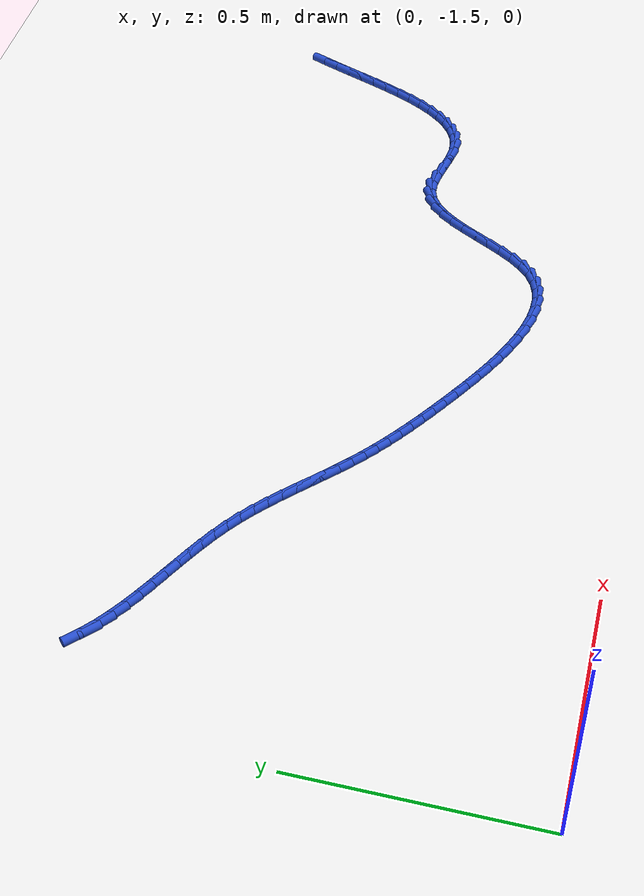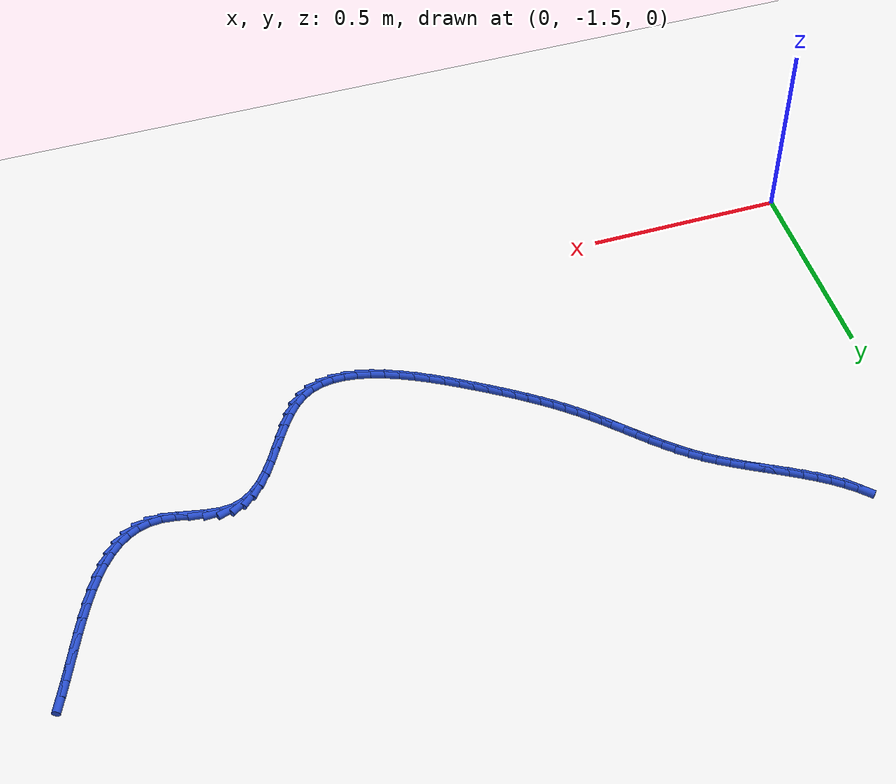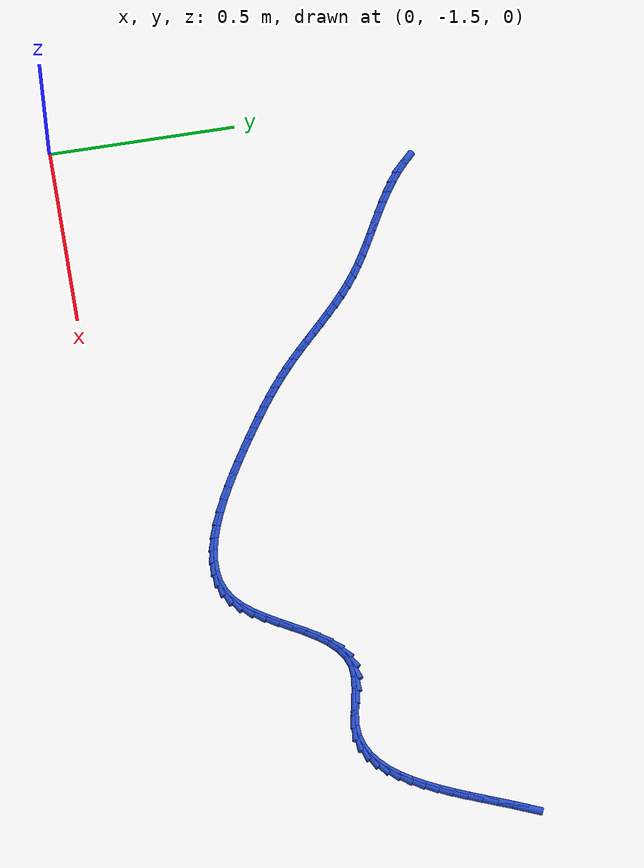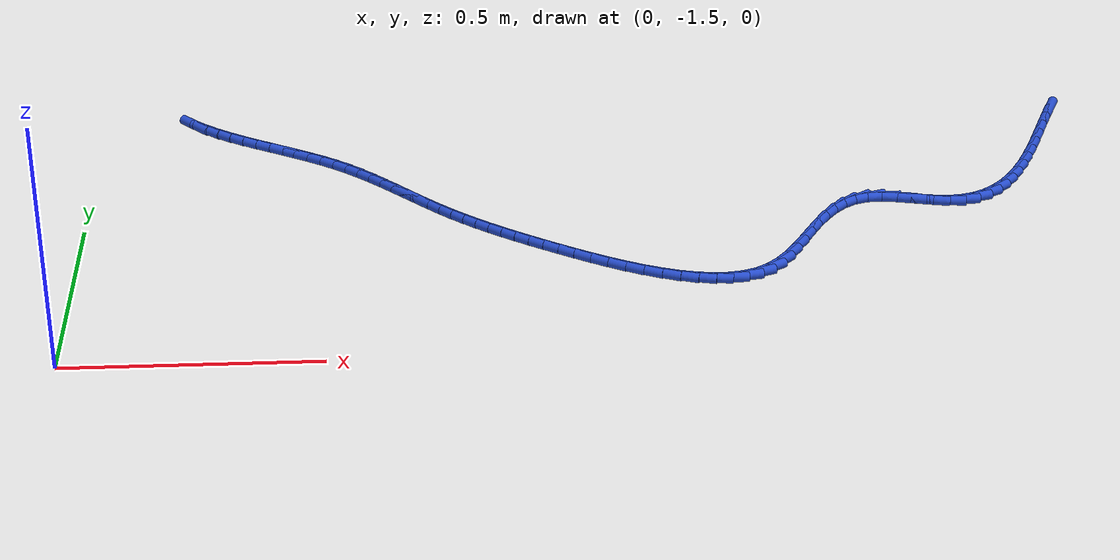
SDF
<sdf version="1.6">
 <world name="default">
  <model name="ground_plane">
   <static>1</static>
   <link name="link">
    <collision name="collision">
     <geometry><plane><normal>0 0 1</normal><size>100 100</size></plane></geometry>
     <surface><friction><ode><mu>100</mu><mu2>50</mu2></ode></friction></surface>
    </collision>
    <visual name="visual">
     <cast_shadows>0</cast_shadows>
     <geometry><plane><normal>0 0 1</normal><size>100 100</size></plane></geometry>
     <material>
      <script><uri>file://media/materials/scripts/gazebo.material</uri><name>Gazebo/WhiteGlow</name></script>
     </material>
    </visual>
   </link>
  </model>
  <model name="line">
   <link name="link_128">
    <pose>2.0259299880434516 -0.5823677519738194 0.01 0 1.57 1.1730430598600052</pose>
    <collision name="collision">
     <geometry><cylinder><radius>0.01</radius><length>0.08</length></cylinder></geometry>
    </collision>
    <visual name="visual">
     <material>
      <script><name>Gazebo/Blue</name><uri>file://media/materials/scripts/gazebo.material</uri></script>
     </material>
     <geometry><cylinder><radius>0.01</radius><length>0.08</length></cylinder></geometry>
    </visual>
   </link>
   <link name="link_129">
    <pose>2.0114672150067396 -0.6167908464994579 0.01 0 1.57 1.1875507603293178</pose>
    <collision name="collision">
     <geometry><cylinder><radius>0.01</radius><length>0.08</length></cylinder></geometry>
    </collision>
    <visual name="visual">
     <material>
      <script><name>Gazebo/Blue</name><uri>file://media/materials/scripts/gazebo.material</uri></script>
     </material>
     <geometry><cylinder><radius>0.01</radius><length>0.08</length></cylinder></geometry>
    </visual>
   </link>
   <link name="link_130">
    <pose>1.9972013718887427 -0.6521740733494433 0.01 0 1.57 1.1919885100447403</pose>
    <collision name="collision">
     <geometry><cylinder><radius>0.01</radius><length>0.08</length></cylinder></geometry>
    </collision>
    <visual name="visual">
     <material>
      <script><name>Gazebo/Blue</name><uri>file://media/materials/scripts/gazebo.material</uri></script>
     </material>
     <geometry><cylinder><radius>0.01</radius><length>0.08</length></cylinder></geometry>
    </visual>
   </link>
   <link name="link_131">
    <pose>1.98293663194036 -0.6880123365451973 0.01 0 1.57 1.1868217123394451</pose>
    <collision name="collision">
     <geometry><cylinder><radius>0.01</radius><length>0.08</length></cylinder></geometry>
    </collision>
    <visual name="visual">
     <material>
      <script><name>Gazebo/Blue</name><uri>file://media/materials/scripts/gazebo.material</uri></script>
     </material>
     <geometry><cylinder><radius>0.01</radius><length>0.08</length></cylinder></geometry>
    </visual>
   </link>
   <link name="link_132">
    <pose>1.9684771684124904 -0.7238005401081387 0.01 0 1.57 1.1719111946471517</pose>
    <collision name="collision">
     <geometry><cylinder><radius>0.01</radius><length>0.08</length></cylinder></geometry>
    </collision>
    <visual name="visual">
     <material>
      <script><name>Gazebo/Blue</name><uri>file://media/materials/scripts/gazebo.material</uri></script>
     </material>
     <geometry><cylinder><radius>0.01</radius><length>0.08</length></cylinder></geometry>
    </visual>
   </link>
   <link name="link_133">
    <pose>1.9536271545560326 -0.7590335880596896 0.01 0 1.57 1.146516483542415</pose>
    <collision name="collision">
     <geometry><cylinder><radius>0.01</radius><length>0.08</length></cylinder></geometry>
    </collision>
    <visual name="visual">
     <material>
      <script><name>Gazebo/Blue</name><uri>file://media/materials/scripts/gazebo.material</uri></script>
     </material>
     <geometry><cylinder><radius>0.01</radius><length>0.08</length></cylinder></geometry>
    </visual>
   </link>
   <link name="link_134">
    <pose>1.9381907636218851 -0.7932063844212702 0.01 0 1.57 1.1092394917270558</pose>
    <collision name="collision">
     <geometry><cylinder><radius>0.01</radius><length>0.08</length></cylinder></geometry>
    </collision>
    <visual name="visual">
     <material>
      <script><name>Gazebo/Blue</name><uri>file://media/materials/scripts/gazebo.material</uri></script>
     </material>
     <geometry><cylinder><radius>0.01</radius><length>0.08</length></cylinder></geometry>
    </visual>
   </link>
   <link name="link_135">
    <pose>1.9219721688609468 -0.8258138332143032 0.01 0 1.57 1.057920424494118</pose>
    <collision name="collision">
     <geometry><cylinder><radius>0.01</radius><length>0.08</length></cylinder></geometry>
    </collision>
    <visual name="visual">
     <material>
      <script><name>Gazebo/Blue</name><uri>file://media/materials/scripts/gazebo.material</uri></script>
     </material>
     <geometry><cylinder><radius>0.01</radius><length>0.08</length></cylinder></geometry>
    </visual>
   </link>
   <link name="link_136">
    <pose>1.9047755435241156 -0.8563508384602065 0.01 0 1.57 0.9895209255278028</pose>
    <collision name="collision">
     <geometry><cylinder><radius>0.01</radius><length>0.08</length></cylinder></geometry>
    </collision>
    <visual name="visual">
     <material>
      <script><name>Gazebo/Blue</name><uri>file://media/materials/scripts/gazebo.material</uri></script>
     </material>
     <geometry><cylinder><radius>0.01</radius><length>0.08</length></cylinder></geometry>
    </visual>
   </link>
   <link name="link_137">
    <pose>1.8864050608622913 -0.8843123041804027 0.01 0 1.57 0.900099755213131</pose>
    <collision name="collision">
     <geometry><cylinder><radius>0.01</radius><length>0.08</length></cylinder></geometry>
    </collision>
    <visual name="visual">
     <material>
      <script><name>Gazebo/Blue</name><uri>file://media/materials/scripts/gazebo.material</uri></script>
     </material>
     <geometry><cylinder><radius>0.01</radius><length>0.08</length></cylinder></geometry>
    </visual>
   </link>
   <link name="link_138">
    <pose>1.8666648941263726 -0.9091931343963128 0.01 0 1.57 0.7851498386772099</pose>
    <collision name="collision">
     <geometry><cylinder><radius>0.01</radius><length>0.08</length></cylinder></geometry>
    </collision>
    <visual name="visual">
     <material>
      <script><name>Gazebo/Blue</name><uri>file://media/materials/scripts/gazebo.material</uri></script>
     </material>
     <geometry><cylinder><radius>0.01</radius><length>0.08</length></cylinder></geometry>
    </visual>
   </link>
   <link name="link_139">
    <pose>1.8453592165672563 -0.9304882331293569 0.01 0 1.57 0.640832516472344</pose>
    <collision name="collision">
     <geometry><cylinder><radius>0.01</radius><length>0.08</length></cylinder></geometry>
    </collision>
    <visual name="visual">
     <material>
      <script><name>Gazebo/Blue</name><uri>file://media/materials/scripts/gazebo.material</uri></script>
     </material>
     <geometry><cylinder><radius>0.01</radius><length>0.08</length></cylinder></geometry>
    </visual>
   </link>
   <link name="link_140">
    <pose>1.8222922014358442 -0.9476925044009563 0.01 0 1.57 0.46672015485492796</pose>
    <collision name="collision">
     <geometry><cylinder><radius>0.01</radius><length>0.08</length></cylinder></geometry>
    </collision>
    <visual name="visual">
     <material>
      <script><name>Gazebo/Blue</name><uri>file://media/materials/scripts/gazebo.material</uri></script>
     </material>
     <geometry><cylinder><radius>0.01</radius><length>0.08</length></cylinder></geometry>
    </visual>
   </link>
   <link name="link_141">
    <pose>1.7972680219830326 -0.9603008522325309 0.01 0 1.57 0.2695154778959505</pose>
    <collision name="collision">
     <geometry><cylinder><radius>0.01</radius><length>0.08</length></cylinder></geometry>
    </collision>
    <visual name="visual">
     <material>
      <script><name>Gazebo/Blue</name><uri>file://media/materials/scripts/gazebo.material</uri></script>
     </material>
     <geometry><cylinder><radius>0.01</radius><length>0.08</length></cylinder></geometry>
    </visual>
   </link>
   <link name="link_142">
    <pose>1.7700908514597216 -0.967808180645503 0.01 0 1.57 0.06431021430191364</pose>
    <collision name="collision">
     <geometry><cylinder><radius>0.01</radius><length>0.08</length></cylinder></geometry>
    </collision>
    <visual name="visual">
     <material>
      <script><name>Gazebo/Blue</name><uri>file://media/materials/scripts/gazebo.material</uri></script>
     </material>
     <geometry><cylinder><radius>0.01</radius><length>0.08</length></cylinder></geometry>
    </visual>
   </link>
   <link name="link_143">
    <pose>1.7405649540769565 -0.9697096194825852 0.01 0 1.57 -0.11023343268903418</pose>
    <collision name="collision">
     <geometry><cylinder><radius>0.01</radius><length>0.08</length></cylinder></geometry>
    </collision>
    <visual name="visual">
     <material>
      <script><name>Gazebo/Blue</name><uri>file://media/materials/scripts/gazebo.material</uri></script>
     </material>
     <geometry><cylinder><radius>0.01</radius><length>0.08</length></cylinder></geometry>
    </visual>
   </link>
   <link name="link_144">
    <pose>1.7087727211506893 -0.966190788033844 0.01 0 1.57 -0.1951183955960468</pose>
    <collision name="collision">
     <geometry><cylinder><radius>0.01</radius><length>0.08</length></cylinder></geometry>
    </collision>
    <visual name="visual">
     <material>
      <script><name>Gazebo/Blue</name><uri>file://media/materials/scripts/gazebo.material</uri></script>
     </material>
     <geometry><cylinder><radius>0.01</radius><length>0.08</length></cylinder></geometry>
    </visual>
   </link>
   <link name="link_145">
    <pose>1.6756887401985199 -0.9596523074764168 0.01 0 1.57 -0.19941315771520754</pose>
    <collision name="collision">
     <geometry><cylinder><radius>0.01</radius><length>0.08</length></cylinder></geometry>
    </collision>
    <visual name="visual">
     <material>
      <script><name>Gazebo/Blue</name><uri>file://media/materials/scripts/gazebo.material</uri></script>
     </material>
     <geometry><cylinder><radius>0.01</radius><length>0.08</length></cylinder></geometry>
    </visual>
   </link>
   <link name="link_146">
    <pose>1.6424661380320393 -0.9529380477620664 0.01 0 1.57 -0.12497115054533066</pose>
    <collision name="collision">
     <geometry><cylinder><radius>0.01</radius><length>0.08</length></cylinder></geometry>
    </collision>
    <visual name="visual">
     <material>
      <script><name>Gazebo/Blue</name><uri>file://media/materials/scripts/gazebo.material</uri></script>
     </material>
     <geometry><cylinder><radius>0.01</radius><length>0.08</length></cylinder></geometry>
    </visual>
   </link>
   <link name="link_147">
    <pose>1.6102580414628394 -0.9488918788425555 0.01 0 1.57 0.04875509731146005</pose>
    <collision name="collision">
     <geometry><cylinder><radius>0.01</radius><length>0.08</length></cylinder></geometry>
    </collision>
    <visual name="visual">
     <material>
      <script><name>Gazebo/Blue</name><uri>file://media/materials/scripts/gazebo.material</uri></script>
     </material>
     <geometry><cylinder><radius>0.01</radius><length>0.08</length></cylinder></geometry>
    </visual>
   </link>
   <link name="link_148">
    <pose>1.58021757553362 -0.9503576662876396 0.01 0 1.57 0.3247201030908295</pose>
    <collision name="collision">
     <geometry><cylinder><radius>0.01</radius><length>0.08</length></cylinder></geometry>
    </collision>
    <visual name="visual">
     <material>
      <script><name>Gazebo/Blue</name><uri>file://media/materials/scripts/gazebo.material</uri></script>
     </material>
     <geometry><cylinder><radius>0.01</radius><length>0.08</length></cylinder></geometry>
    </visual>
   </link>
   <link name="link_149">
    <pose>1.5532040416625692 -0.95945139727013 0.01 0 1.57 0.585832410845312</pose>
    <collision name="collision">
     <geometry><cylinder><radius>0.01</radius><length>0.08</length></cylinder></geometry>
    </collision>
    <visual name="visual">
     <material>
      <script><name>Gazebo/Blue</name><uri>file://media/materials/scripts/gazebo.material</uri></script>
     </material>
     <geometry><cylinder><radius>0.01</radius><length>0.08</length></cylinder></geometry>
    </visual>
   </link>
   <link name="link_150">
    <pose>1.5289649687704647 -0.9755349060776917 0.01 0 1.57 0.7809155714537817</pose>
    <collision name="collision">
     <geometry><cylinder><radius>0.01</radius><length>0.08</length></cylinder></geometry>
    </collision>
    <visual name="visual">
     <material>
      <script><name>Gazebo/Blue</name><uri>file://media/materials/scripts/gazebo.material</uri></script>
     </material>
     <geometry><cylinder><radius>0.01</radius><length>0.08</length></cylinder></geometry>
    </visual>
   </link>
   <link name="link_151">
    <pose>1.5069849736667513 -0.9973187245492796 0.01 0 1.57 0.9130279090325116</pose>
    <collision name="collision">
     <geometry><cylinder><radius>0.01</radius><length>0.08</length></cylinder></geometry>
    </collision>
    <visual name="visual">
     <material>
      <script><name>Gazebo/Blue</name><uri>file://media/materials/scripts/gazebo.material</uri></script>
     </material>
     <geometry><cylinder><radius>0.01</radius><length>0.08</length></cylinder></geometry>
    </visual>
   </link>
   <link name="link_152">
    <pose>1.4867486731608712 -1.0235133845238475 0.01 0 1.57 0.9955593625242147</pose>
    <collision name="collision">
     <geometry><cylinder><radius>0.01</radius><length>0.08</length></cylinder></geometry>
    </collision>
    <visual name="visual">
     <material>
      <script><name>Gazebo/Blue</name><uri>file://media/materials/scripts/gazebo.material</uri></script>
     </material>
     <geometry><cylinder><radius>0.01</radius><length>0.08</length></cylinder></geometry>
    </visual>
   </link>
   <link name="link_153">
    <pose>1.4677406840622704 -1.0528294178403488 0.01 0 1.57 1.03972260664129</pose>
    <collision name="collision">
     <geometry><cylinder><radius>0.01</radius><length>0.08</length></cylinder></geometry>
    </collision>
    <visual name="visual">
     <material>
      <script><name>Gazebo/Blue</name><uri>file://media/materials/scripts/gazebo.material</uri></script>
     </material>
     <geometry><cylinder><radius>0.01</radius><length>0.08</length></cylinder></geometry>
    </visual>
   </link>
   <link name="link_154">
    <pose>1.4494456231803923 -1.083977356337737 0.01 0 1.57 1.0519183464455115</pose>
    <collision name="collision">
     <geometry><cylinder><radius>0.01</radius><length>0.08</length></cylinder></geometry>
    </collision>
    <visual name="visual">
     <material>
      <script><name>Gazebo/Blue</name><uri>file://media/materials/scripts/gazebo.material</uri></script>
     </material>
     <geometry><cylinder><radius>0.01</radius><length>0.08</length></cylinder></geometry>
    </visual>
   </link>
   <link name="link_155">
    <pose>1.43134810732468 -1.115667731854967 0.01 0 1.57 1.033964413723012</pose>
    <collision name="collision">
     <geometry><cylinder><radius>0.01</radius><length>0.08</length></cylinder></geometry>
    </collision>
    <visual name="visual">
     <material>
      <script><name>Gazebo/Blue</name><uri>file://media/materials/scripts/gazebo.material</uri></script>
     </material>
     <geometry><cylinder><radius>0.01</radius><length>0.08</length></cylinder></geometry>
    </visual>
   </link>
   <link name="link_156">
    <pose>1.4129327533045777 -1.146611076230993 0.01 0 1.57 0.9833364901512713</pose>
    <collision name="collision">
     <geometry><cylinder><radius>0.01</radius><length>0.08</length></cylinder></geometry>
    </collision>
    <visual name="visual">
     <material>
      <script><name>Gazebo/Blue</name><uri>file://media/materials/scripts/gazebo.material</uri></script>
     </material>
     <geometry><cylinder><radius>0.01</radius><length>0.08</length></cylinder></geometry>
    </visual>
   </link>
   <link name="link_157">
    <pose>1.3936841779295306 -1.1755179213047673 0.01 0 1.57 0.8929055572785545</pose>
    <collision name="collision">
     <geometry><cylinder><radius>0.01</radius><length>0.08</length></cylinder></geometry>
    </collision>
    <visual name="visual">
     <material>
      <script><name>Gazebo/Blue</name><uri>file://media/materials/scripts/gazebo.material</uri></script>
     </material>
     <geometry><cylinder><radius>0.01</radius><length>0.08</length></cylinder></geometry>
    </visual>
   </link>
   <link name="link_158">
    <pose>1.3730869980089808 -1.2010987989152442 0.01 0 1.57 0.7509691659003452</pose>
    <collision name="collision">
     <geometry><cylinder><radius>0.01</radius><length>0.08</length></cylinder></geometry>
    </collision>
    <visual name="visual">
     <material>
      <script><name>Gazebo/Blue</name><uri>file://media/materials/scripts/gazebo.material</uri></script>
     </material>
     <geometry><cylinder><radius>0.01</radius><length>0.08</length></cylinder></geometry>
    </visual>
   </link>
   <link name="link_159">
    <pose>1.350625830352374 -1.2220642409013789 0.01 0 1.57 0.5532916576437186</pose>
    <collision name="collision">
     <geometry><cylinder><radius>0.01</radius><length>0.08</length></cylinder></geometry>
    </collision>
    <visual name="visual">
     <material>
      <script><name>Gazebo/Blue</name><uri>file://media/materials/scripts/gazebo.material</uri></script>
     </material>
     <geometry><cylinder><radius>0.01</radius><length>0.08</length></cylinder></geometry>
    </visual>
   </link>
   <link name="link_160">
    <pose>1.3258850277930643 -1.2373452336563167 0.01 0 1.57 0.3460572473746543</pose>
    <collision name="collision">
     <geometry><cylinder><radius>0.01</radius><length>0.08</length></cylinder></geometry>
    </collision>
    <visual name="visual">
     <material>
      <script><name>Gazebo/Blue</name><uri>file://media/materials/scripts/gazebo.material</uri></script>
     </material>
     <geometry><cylinder><radius>0.01</radius><length>0.08</length></cylinder></geometry>
    </visual>
   </link>
   <link name="link_161">
    <pose>1.2989798801339059 -1.2470463362536028 0.01 0 1.57 0.15900169409507536</pose>
    <collision name="collision">
     <geometry><cylinder><radius>0.01</radius><length>0.08</length></cylinder></geometry>
    </collision>
    <visual name="visual">
     <material>
      <script><name>Gazebo/Blue</name><uri>file://media/materials/scripts/gazebo.material</uri></script>
     </material>
     <geometry><cylinder><radius>0.01</radius><length>0.08</length></cylinder></geometry>
    </visual>
   </link>
   <link name="link_162">
    <pose>1.2702016516520351 -1.2516610782987556 0.01 0 1.57 0.0007300468854510262</pose>
    <collision name="collision">
     <geometry><cylinder><radius>0.01</radius><length>0.08</length></cylinder></geometry>
    </collision>
    <visual name="visual">
     <material>
      <script><name>Gazebo/Blue</name><uri>file://media/materials/scripts/gazebo.material</uri></script>
     </material>
     <geometry><cylinder><radius>0.01</radius><length>0.08</length></cylinder></geometry>
    </visual>
   </link>
   <link name="link_163">
    <pose>1.2398417211198713 -1.2516832424754207 0.01 0 1.57 -0.12809720058687227</pose>
    <collision name="collision">
     <geometry><cylinder><radius>0.01</radius><length>0.08</length></cylinder></geometry>
    </collision>
    <visual name="visual">
     <material>
      <script><name>Gazebo/Blue</name><uri>file://media/materials/scripts/gazebo.material</uri></script>
     </material>
     <geometry><cylinder><radius>0.01</radius><length>0.08</length></cylinder></geometry>
    </visual>
   </link>
   <link name="link_164">
    <pose>1.2081914673098344 -1.2476066114672442 0.01 0 1.57 -0.23107555254462034</pose>
    <collision name="collision">
     <geometry><cylinder><radius>0.01</radius><length>0.08</length></cylinder></geometry>
    </collision>
    <visual name="visual">
     <material>
      <script><name>Gazebo/Blue</name><uri>file://media/materials/scripts/gazebo.material</uri></script>
     </material>
     <geometry><cylinder><radius>0.01</radius><length>0.08</length></cylinder></geometry>
    </visual>
   </link>
   <link name="link_165">
    <pose>1.1755422689943422 -1.2399249679578725 0.01 0 1.57 -0.31292779813174476</pose>
    <collision name="collision">
     <geometry><cylinder><radius>0.01</radius><length>0.08</length></cylinder></geometry>
    </collision>
    <visual name="visual">
     <material>
      <script><name>Gazebo/Blue</name><uri>file://media/materials/scripts/gazebo.material</uri></script>
     </material>
     <geometry><cylinder><radius>0.01</radius><length>0.08</length></cylinder></geometry>
    </visual>
   </link>
   <link name="link_166">
    <pose>1.1421855049458156 -1.2291320946309516 0.01 0 1.57 -0.37798039064101674</pose>
    <collision name="collision">
     <geometry><cylinder><radius>0.01</radius><length>0.08</length></cylinder></geometry>
    </collision>
    <visual name="visual">
     <material>
      <script><name>Gazebo/Blue</name><uri>file://media/materials/scripts/gazebo.material</uri></script>
     </material>
     <geometry><cylinder><radius>0.01</radius><length>0.08</length></cylinder></geometry>
    </visual>
   </link>
   <link name="link_167">
    <pose>1.108412553936673 -1.2157217741701276 0.01 0 1.57 -0.42970162073806084</pose>
    <collision name="collision">
     <geometry><cylinder><radius>0.01</radius><length>0.08</length></cylinder></geometry>
    </collision>
    <visual name="visual">
     <material>
      <script><name>Gazebo/Blue</name><uri>file://media/materials/scripts/gazebo.material</uri></script>
     </material>
     <geometry><cylinder><radius>0.01</radius><length>0.08</length></cylinder></geometry>
    </visual>
   </link>
   <link name="link_168">
    <pose>1.0745147947393336 -1.200187789259047 0.01 0 1.57 -0.47069666180186187</pose>
    <collision name="collision">
     <geometry><cylinder><radius>0.01</radius><length>0.08</length></cylinder></geometry>
    </collision>
    <visual name="visual">
     <material>
      <script><name>Gazebo/Blue</name><uri>file://media/materials/scripts/gazebo.material</uri></script>
     </material>
     <geometry><cylinder><radius>0.01</radius><length>0.08</length></cylinder></geometry>
    </visual>
   </link>
   <link name="link_169">
    <pose>1.0407836061262163 -1.1830239225813552 0.01 0 1.57 -0.5028359233557887</pose>
    <collision name="collision">
     <geometry><cylinder><radius>0.01</radius><length>0.08</length></cylinder></geometry>
    </collision>
    <visual name="visual">
     <material>
      <script><name>Gazebo/Blue</name><uri>file://media/materials/scripts/gazebo.material</uri></script>
     </material>
     <geometry><cylinder><radius>0.01</radius><length>0.08</length></cylinder></geometry>
    </visual>
   </link>
   <link name="link_170">
    <pose>1.0075103668697414 -1.1647239568206988 0.01 0 1.57 -0.5273859732259489</pose>
    <collision name="collision">
     <geometry><cylinder><radius>0.01</radius><length>0.08</length></cylinder></geometry>
    </collision>
    <visual name="visual">
     <material>
      <script><name>Gazebo/Blue</name><uri>file://media/materials/scripts/gazebo.material</uri></script>
     </material>
     <geometry><cylinder><radius>0.01</radius><length>0.08</length></cylinder></geometry>
    </visual>
   </link>
   <link name="link_171">
    <pose>0.9749864557423277 -1.1457816746607243 0.01 0 1.57 -0.5450981836528602</pose>
    <collision name="collision">
     <geometry><cylinder><radius>0.01</radius><length>0.08</length></cylinder></geometry>
    </collision>
    <visual name="visual">
     <material>
      <script><name>Gazebo/Blue</name><uri>file://media/materials/scripts/gazebo.material</uri></script>
     </material>
     <geometry><cylinder><radius>0.01</radius><length>0.08</length></cylinder></geometry>
    </visual>
   </link>
   <link name="link_172">
    <pose>0.943503251516394 -1.1266908587850775 0.01 0 1.57 -0.5570583497381945</pose>
    <collision name="collision">
     <geometry><cylinder><radius>0.01</radius><length>0.08</length></cylinder></geometry>
    </collision>
    <visual name="visual">
     <material>
      <script><name>Gazebo/Blue</name><uri>file://media/materials/scripts/gazebo.material</uri></script>
     </material>
     <geometry><cylinder><radius>0.01</radius><length>0.08</length></cylinder></geometry>
    </visual>
   </link>
   <link name="link_173">
    <pose>0.9133159723008739 -1.1078884355651961 0.01 0 1.57 -0.569173364218991</pose>
    <collision name="collision">
     <geometry><cylinder><radius>0.01</radius><length>0.08</length></cylinder></geometry>
    </collision>
    <visual name="visual">
     <material>
      <script><name>Gazebo/Blue</name><uri>file://media/materials/scripts/gazebo.material</uri></script>
     </material>
     <geometry><cylinder><radius>0.01</radius><length>0.08</length></cylinder></geometry>
    </visual>
   </link>
   <link name="link_174">
    <pose>0.8844177735054205 -1.089399283660658 0.01 0 1.57 -0.5841212043368126</pose>
    <collision name="collision">
     <geometry><cylinder><radius>0.01</radius><length>0.08</length></cylinder></geometry>
    </collision>
    <visual name="visual">
     <material>
      <script><name>Gazebo/Blue</name><uri>file://media/materials/scripts/gazebo.material</uri></script>
     </material>
     <geometry><cylinder><radius>0.01</radius><length>0.08</length></cylinder></geometry>
    </visual>
   </link>
   <link name="link_175">
    <pose>0.8566863527654544 -1.0710667445957736 0.01 0 1.57 -0.6019248045181821</pose>
    <collision name="collision">
     <geometry><cylinder><radius>0.01</radius><length>0.08</length></cylinder></geometry>
    </collision>
    <visual name="visual">
     <material>
      <script><name>Gazebo/Blue</name><uri>file://media/materials/scripts/gazebo.material</uri></script>
     </material>
     <geometry><cylinder><radius>0.01</radius><length>0.08</length></cylinder></geometry>
    </visual>
   </link>
   <link name="link_176">
    <pose>0.8299989046072108 -1.0527333688437426 0.01 0 1.57 -0.6224862076283761</pose>
    <collision name="collision">
     <geometry><cylinder><radius>0.01</radius><length>0.08</length></cylinder></geometry>
    </collision>
    <visual name="visual">
     <material>
      <script><name>Gazebo/Blue</name><uri>file://media/materials/scripts/gazebo.material</uri></script>
     </material>
     <geometry><cylinder><radius>0.01</radius><length>0.08</length></cylinder></geometry>
    </visual>
   </link>
   <link name="link_177">
    <pose>0.804232623556924 -1.0342417068777656 0.01 0 1.57 -0.6455858489365506</pose>
    <collision name="collision">
     <geometry><cylinder><radius>0.01</radius><length>0.08</length></cylinder></geometry>
    </collision>
    <visual name="visual">
     <material>
      <script><name>Gazebo/Blue</name><uri>file://media/materials/scripts/gazebo.material</uri></script>
     </material>
     <geometry><cylinder><radius>0.01</radius><length>0.08</length></cylinder></geometry>
    </visual>
   </link>
   <link name="link_178">
    <pose>0.779264704140829 -1.015434309171042 0.01 0 1.57 -0.6708809445785615</pose>
    <collision name="collision">
     <geometry><cylinder><radius>0.01</radius><length>0.08</length></cylinder></geometry>
    </collision>
    <visual name="visual">
     <material>
      <script><name>Gazebo/Blue</name><uri>file://media/materials/scripts/gazebo.material</uri></script>
     </material>
     <geometry><cylinder><radius>0.01</radius><length>0.08</length></cylinder></geometry>
    </visual>
   </link>
   <link name="link_179">
    <pose>0.7549723408851611 -0.9961537261967729 0.01 0 1.57 -0.6979170406498695</pose>
    <collision name="collision">
     <geometry><cylinder><radius>0.01</radius><length>0.08</length></cylinder></geometry>
    </collision>
    <visual name="visual">
     <material>
      <script><name>Gazebo/Blue</name><uri>file://media/materials/scripts/gazebo.material</uri></script>
     </material>
     <geometry><cylinder><radius>0.01</radius><length>0.08</length></cylinder></geometry>
    </visual>
   </link>
   <link name="link_180">
    <pose>0.7312327283161546 -0.9762425084281571 0.01 0 1.57 -0.7261474470603653</pose>
    <collision name="collision">
     <geometry><cylinder><radius>0.01</radius><length>0.08</length></cylinder></geometry>
    </collision>
    <visual name="visual">
     <material>
      <script><name>Gazebo/Blue</name><uri>file://media/materials/scripts/gazebo.material</uri></script>
     </material>
     <geometry><cylinder><radius>0.01</radius><length>0.08</length></cylinder></geometry>
    </visual>
   </link>
   <link name="link_181">
    <pose>0.7079230401395643 -0.9555434270607225 0.01 0 1.57 -0.752393498471005</pose>
    <collision name="collision">
     <geometry><cylinder><radius>0.01</radius><length>0.08</length></cylinder></geometry>
    </collision>
    <visual name="visual">
     <material>
      <script><name>Gazebo/Blue</name><uri>file://media/materials/scripts/gazebo.material</uri></script>
     </material>
     <geometry><cylinder><radius>0.01</radius><length>0.08</length></cylinder></geometry>
    </visual>
   </link>
   <link name="link_182">
    <pose>0.6849107447078451 -0.9340021417975726 0.01 0 1.57 -0.7698353245830819</pose>
    <collision name="collision">
     <geometry><cylinder><radius>0.01</radius><length>0.08</length></cylinder></geometry>
    </collision>
    <visual name="visual">
     <material>
      <script><name>Gazebo/Blue</name><uri>file://media/materials/scripts/gazebo.material</uri></script>
     </material>
     <geometry><cylinder><radius>0.01</radius><length>0.08</length></cylinder></geometry>
    </visual>
   </link>
   <link name="link_183">
    <pose>0.6620381867093784 -0.9118306536302061 0.01 0 1.57 -0.7777549785639848</pose>
    <collision name="collision">
     <geometry><cylinder><radius>0.01</radius><length>0.08</length></cylinder></geometry>
    </collision>
    <visual name="visual">
     <material>
      <script><name>Gazebo/Blue</name><uri>file://media/materials/scripts/gazebo.material</uri></script>
     </material>
     <geometry><cylinder><radius>0.01</radius><length>0.08</length></cylinder></geometry>
    </visual>
   </link>
   <link name="link_184">
    <pose>0.639143699192046 -0.8892834918013793 0.01 0 1.57 -0.7764408056865909</pose>
    <collision name="collision">
     <geometry><cylinder><radius>0.01</radius><length>0.08</length></cylinder></geometry>
    </collision>
    <visual name="visual">
     <material>
      <script><name>Gazebo/Blue</name><uri>file://media/materials/scripts/gazebo.material</uri></script>
     </material>
     <geometry><cylinder><radius>0.01</radius><length>0.08</length></cylinder></geometry>
    </visual>
   </link>
   <link name="link_185">
    <pose>0.616065615203731 -0.8666151855538501 0.01 0 1.57 -0.7660694251960389</pose>
    <collision name="collision">
     <geometry><cylinder><radius>0.01</radius><length>0.08</length></cylinder></geometry>
    </collision>
    <visual name="visual">
     <material>
      <script><name>Gazebo/Blue</name><uri>file://media/materials/scripts/gazebo.material</uri></script>
     </material>
     <geometry><cylinder><radius>0.01</radius><length>0.08</length></cylinder></geometry>
    </visual>
   </link>
   <link name="link_186">
    <pose>0.5926422677923155 -0.8440802641303753 0.01 0 1.57 -0.7467157435838153</pose>
    <collision name="collision">
     <geometry><cylinder><radius>0.01</radius><length>0.08</length></cylinder></geometry>
    </collision>
    <visual name="visual">
     <material>
      <script><name>Gazebo/Blue</name><uri>file://media/materials/scripts/gazebo.material</uri></script>
     </material>
     <geometry><cylinder><radius>0.01</radius><length>0.08</length></cylinder></geometry>
    </visual>
   </link>
   <link name="link_187">
    <pose>0.5687119900056842 -0.8219332567737142 0.01 0 1.57 -0.7183819629716975</pose>
    <collision name="collision">
     <geometry><cylinder><radius>0.01</radius><length>0.08</length></cylinder></geometry>
    </collision>
    <visual name="visual">
     <material>
      <script><name>Gazebo/Blue</name><uri>file://media/materials/scripts/gazebo.material</uri></script>
     </material>
     <geometry><cylinder><radius>0.01</radius><length>0.08</length></cylinder></geometry>
    </visual>
   </link>
   <link name="link_188">
    <pose>0.5441131148917187 -0.8004286927266235 0.01 0 1.57 -0.681045967575702</pose>
    <collision name="collision">
     <geometry><cylinder><radius>0.01</radius><length>0.08</length></cylinder></geometry>
    </collision>
    <visual name="visual">
     <material>
      <script><name>Gazebo/Blue</name><uri>file://media/materials/scripts/gazebo.material</uri></script>
     </material>
     <geometry><cylinder><radius>0.01</radius><length>0.08</length></cylinder></geometry>
    </visual>
   </link>
   <link name="link_189">
    <pose>0.518683975498302 -0.7798211012318608 0.01 0 1.57 -0.6347935618786219</pose>
    <collision name="collision">
     <geometry><cylinder><radius>0.01</radius><length>0.08</length></cylinder></geometry>
    </collision>
    <visual name="visual">
     <material>
      <script><name>Gazebo/Blue</name><uri>file://media/materials/scripts/gazebo.material</uri></script>
     </material>
     <geometry><cylinder><radius>0.01</radius><length>0.08</length></cylinder></geometry>
    </visual>
   </link>
   <link name="link_190">
    <pose>0.4922641918514614 -0.7603633956913249 0.01 0 1.57 -0.5863213269971966</pose>
    <collision name="collision">
     <geometry><cylinder><radius>0.01</radius><length>0.08</length></cylinder></geometry>
    </collision>
    <visual name="visual">
     <material>
      <script><name>Gazebo/Blue</name><uri>file://media/materials/scripts/gazebo.material</uri></script>
     </material>
     <geometry><cylinder><radius>0.01</radius><length>0.08</length></cylinder></geometry>
    </visual>
   </link>
   <link name="link_191">
    <pose>0.46482816629944657 -0.742139266133538 0.01 0 1.57 -0.547842845854781</pose>
    <collision name="collision">
     <geometry><cylinder><radius>0.01</radius><length>0.08</length></cylinder></geometry>
    </collision>
    <visual name="visual">
     <material>
      <script><name>Gazebo/Blue</name><uri>file://media/materials/scripts/gazebo.material</uri></script>
     </material>
     <geometry><cylinder><radius>0.01</radius><length>0.08</length></cylinder></geometry>
    </visual>
   </link>
   <link name="link_192">
    <pose>0.4366014988969194 -0.7249170160989075 0.01 0 1.57 -0.5204500495969459</pose>
    <collision name="collision">
     <geometry><cylinder><radius>0.01</radius><length>0.08</length></cylinder></geometry>
    </collision>
    <visual name="visual">
     <material>
      <script><name>Gazebo/Blue</name><uri>file://media/materials/scripts/gazebo.material</uri></script>
     </material>
     <geometry><cylinder><radius>0.01</radius><length>0.08</length></cylinder></geometry>
    </visual>
   </link>
   <link name="link_193">
    <pose>0.4078372283276396 -0.7084304990805352 0.01 0 1.57 -0.5039016677899008</pose>
    <collision name="collision">
     <geometry><cylinder><radius>0.01</radius><length>0.08</length></cylinder></geometry>
    </collision>
    <visual name="visual">
     <material>
      <script><name>Gazebo/Blue</name><uri>file://media/materials/scripts/gazebo.material</uri></script>
     </material>
     <geometry><cylinder><radius>0.01</radius><length>0.08</length></cylinder></geometry>
    </visual>
   </link>
   <link name="link_194">
    <pose>0.37878839327536634 -0.6924135685715219 0.01 0 1.57 -0.49805980172540915</pose>
    <collision name="collision">
     <geometry><cylinder><radius>0.01</radius><length>0.08</length></cylinder></geometry>
    </collision>
    <visual name="visual">
     <material>
      <script><name>Gazebo/Blue</name><uri>file://media/materials/scripts/gazebo.material</uri></script>
     </material>
     <geometry><cylinder><radius>0.01</radius><length>0.08</length></cylinder></geometry>
    </visual>
   </link>
   <link name="link_195">
    <pose>0.34970803242385845 -0.6766000780649688 0.01 0 1.57 -0.5029451144145847</pose>
    <collision name="collision">
     <geometry><cylinder><radius>0.01</radius><length>0.08</length></cylinder></geometry>
    </collision>
    <visual name="visual">
     <material>
      <script><name>Gazebo/Blue</name><uri>file://media/materials/scripts/gazebo.material</uri></script>
     </material>
     <geometry><cylinder><radius>0.01</radius><length>0.08</length></cylinder></geometry>
    </visual>
   </link>
   <link name="link_196">
    <pose>0.320849184456877 -0.6607238810539778 0.01 0 1.57 -0.5187596570828839</pose>
    <collision name="collision">
     <geometry><cylinder><radius>0.01</radius><length>0.08</length></cylinder></geometry>
    </collision>
    <visual name="visual">
     <material>
      <script><name>Gazebo/Blue</name><uri>file://media/materials/scripts/gazebo.material</uri></script>
     </material>
     <geometry><cylinder><radius>0.01</radius><length>0.08</length></cylinder></geometry>
    </visual>
   </link>
   <link name="link_197">
    <pose>0.2924648880581808 -0.64451883103165 0.01 0 1.57 -0.5458790028180712</pose>
    <collision name="collision">
     <geometry><cylinder><radius>0.01</radius><length>0.08</length></cylinder></geometry>
    </collision>
    <visual name="visual">
     <material>
      <script><name>Gazebo/Blue</name><uri>file://media/materials/scripts/gazebo.material</uri></script>
     </material>
     <geometry><cylinder><radius>0.01</radius><length>0.08</length></cylinder></geometry>
    </visual>
   </link>
   <link name="link_198">
    <pose>0.2648081819115293 -0.6277187814910864 0.01 0 1.57 -0.5848074194947352</pose>
    <collision name="collision">
     <geometry><cylinder><radius>0.01</radius><length>0.08</length></cylinder></geometry>
    </collision>
    <visual name="visual">
     <material>
      <script><name>Gazebo/Blue</name><uri>file://media/materials/scripts/gazebo.material</uri></script>
     </material>
     <geometry><cylinder><radius>0.01</radius><length>0.08</length></cylinder></geometry>
    </visual>
   </link>
   <link name="link_199">
    <pose>0.23813210470068136 -0.6100575859253882 0.01 0 1.57 -0.6360817892687215</pose>
    <collision name="collision">
     <geometry><cylinder><radius>0.01</radius><length>0.08</length></cylinder></geometry>
    </collision>
    <visual name="visual">
     <material>
      <script><name>Gazebo/Blue</name><uri>file://media/materials/scripts/gazebo.material</uri></script>
     </material>
     <geometry><cylinder><radius>0.01</radius><length>0.08</length></cylinder></geometry>
    </visual>
   </link>
   <link name="link_200">
    <pose>0.21268969510939778 -0.591269097827657 0.01 0 1.57 -0.7001053996426146</pose>
    <collision name="collision">
     <geometry><cylinder><radius>0.01</radius><length>0.08</length></cylinder></geometry>
    </collision>
    <visual name="visual">
     <material>
      <script><name>Gazebo/Blue</name><uri>file://media/materials/scripts/gazebo.material</uri></script>
     </material>
     <geometry><cylinder><radius>0.01</radius><length>0.08</length></cylinder></geometry>
    </visual>
   </link>
   <link name="link_201">
    <pose>0.18873399182143738 -0.5710871706909939 0.01 0 1.57 -0.7768993414137073</pose>
    <collision name="collision">
     <geometry><cylinder><radius>0.01</radius><length>0.08</length></cylinder></geometry>
    </collision>
    <visual name="visual">
     <material>
      <script><name>Gazebo/Blue</name><uri>file://media/materials/scripts/gazebo.material</uri></script>
     </material>
     <geometry><cylinder><radius>0.01</radius><length>0.08</length></cylinder></geometry>
    </visual>
   </link>
  </model>
 </world>
</sdf>
